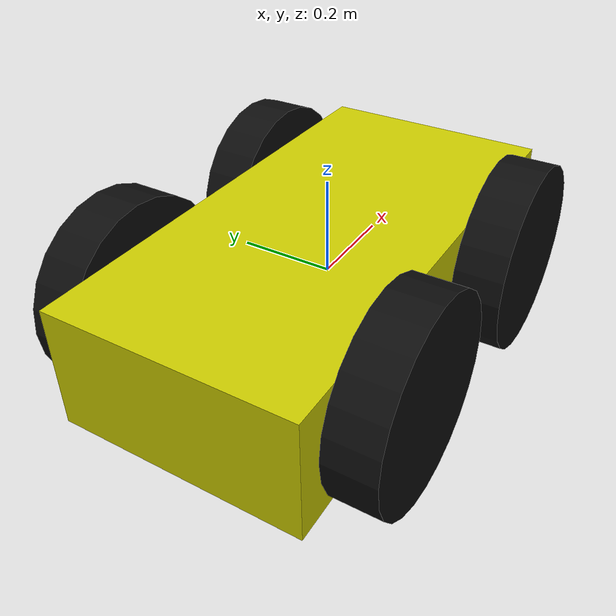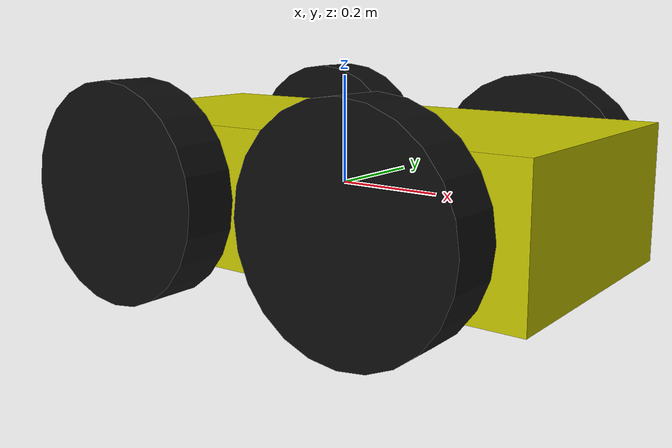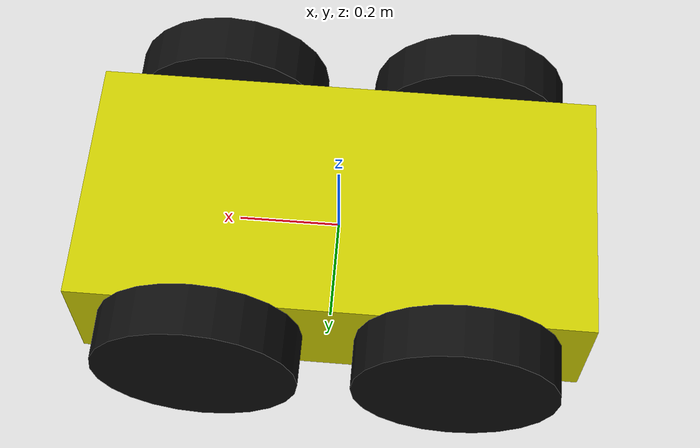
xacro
<?xml version="1.0"?>
<robot name="labrob">
  <!-- Base link -->
  <link name="base_link">
    <visual>
      <origin xyz="0 0 0" rpy="0 0 0" />
      <geometry>
          <box size="1 0.5 0.25"/>
      </geometry>
      <material name="yellow">
        <color rgba="0.8 0.8 0 1"/>
      </material>
    </visual>
  </link>
  <!-- Front Right Wheel -->
  <link name="f_r_wheel">
    <visual>
      <origin xyz="0 0 0" rpy="1.570795 0 0" />
      <geometry>
          <cylinder length="0.1" radius="0.2" />
      </geometry>
      <material name="black">
        <color rgba="0.05 0.05 0.05 1"/>
      </material>
    </visual>
  </link>
  <joint name="joint_f_r_wheel" type="continuous">
    <parent link="base_link"/>
    <child link="f_r_wheel"/>
    <origin xyz="0.25 -0.30 0" rpy="0 0 0" />
    <axis xyz="0 1 0" rpy="0 0 0" />
  </joint>
  <!-- Back Right Wheel -->
  <link name="b_r_wheel">
    <visual>
      <origin xyz="0 0 0" rpy="1.570795 0 0" />
      <geometry>
          <cylinder length="0.1" radius="0.2" />
      </geometry>
      <material name="black"/>
    </visual>
  </link>
  <joint name="joint_b_r_wheel" type="continuous">
    <parent link="base_link"/>
    <child link="b_r_wheel"/>
    <origin xyz="-0.25 -0.30 0" rpy="0 0 0" />
    <axis xyz="0 1 0" rpy="0 0 0" />
  </joint>
  <!-- Front Left Wheel -->
  <link name="f_l_wheel">
    <visual>
      <origin xyz="0 0 0" rpy="1.570795 0 0" />
      <geometry>
          <cylinder length="0.1" radius="0.2" />
      </geometry>
      <material name="black"/>
    </visual>
  </link>
  <joint name="joint_f_l_wheel" type="continuous">
    <parent link="base_link"/>
    <child link="f_l_wheel"/>
    <origin xyz="0.25 0.30 0" rpy="0 0 0" />
    <axis xyz="0 1 0" rpy="0 0 0" />
  </joint>
  <!-- Back Left Wheel -->
  <link name="b_l_wheel">
    <visual>
      <origin xyz="0 0 0" rpy="1.570795 0 0" />
      <geometry>
          <cylinder length="0.1" radius="0.2" />
      </geometry>
      <material name="black"/>
    </visual>
  </link>
  <joint name="joint_b_l_wheel" type="continuous">
    <parent link="base_link"/>
    <child link="b_l_wheel"/>
    <origin xyz="-0.25 0.30 0" rpy="0 0 0" />
    <axis xyz="0 1 0" rpy="0 0 0" />
  </joint>
</robot>
